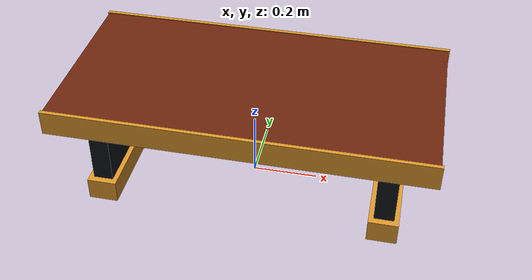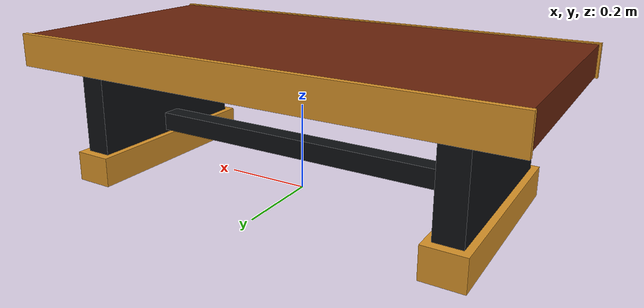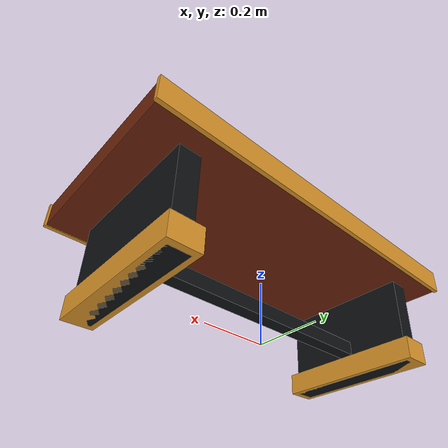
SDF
<?xml version="1.0"?>
<sdf version="1.9">
  <model name="fancy_table">
    <static>true</static>
    <link name="table">
      <!-- Simple collision shapes keep the table stable and inexpensive to simulate. -->
      <collision name="top_collision">
        <!-- Top surface is z=0.35, matching panda_link0 in arm.xacro. -->
        <pose>0 0 0.315 0 0 0</pose>
        <geometry><box><size>1.12 0.56 0.07</size></box></geometry>
      </collision>
      <collision name="left_leg_collision">
        <pose>-0.43 0 0.1525 0 0 0</pose>
        <geometry><box><size>0.06 0.44 0.305</size></box></geometry>
      </collision>
      <collision name="right_leg_collision">
        <pose>0.43 0 0.1525 0 0 0</pose>
        <geometry><box><size>0.06 0.44 0.305</size></box></geometry>
      </collision>

      <!-- Warm walnut top. -->
      <visual name="walnut_top">
        <pose>0 0 0.315 0 0 0</pose>
        <geometry><box><size>1.12 0.56 0.07</size></box></geometry>
        <material>
          <ambient>0.24 0.075 0.025 1</ambient>
          <diffuse>0.42 0.14 0.045 1</diffuse>
          <specular>0.22 0.16 0.10 1</specular>
        </material>
      </visual>

      <!-- Thin brass edge bands give the top a more finished appearance. -->
      <visual name="front_brass_trim">
        <pose>0 -0.283 0.315 0 0 0</pose>
        <geometry><box><size>1.13 0.012 0.075</size></box></geometry>
        <material>
          <ambient>0.55 0.32 0.07 1</ambient>
          <diffuse>0.85 0.58 0.16 1</diffuse>
          <specular>0.95 0.80 0.35 1</specular>
        </material>
      </visual>
      <visual name="back_brass_trim">
        <pose>0 0.283 0.315 0 0 0</pose>
        <geometry><box><size>1.13 0.012 0.075</size></box></geometry>
        <material>
          <ambient>0.55 0.32 0.07 1</ambient>
          <diffuse>0.85 0.58 0.16 1</diffuse>
          <specular>0.95 0.80 0.35 1</specular>
        </material>
      </visual>

      <!-- Matte-black steel pedestal legs and lower crossbar. -->
      <visual name="left_leg">
        <pose>-0.43 0 0.1525 0 0 0</pose>
        <geometry><box><size>0.06 0.44 0.305</size></box></geometry>
        <material>
          <ambient>0.025 0.03 0.035 1</ambient>
          <diffuse>0.055 0.065 0.075 1</diffuse>
          <specular>0.35 0.38 0.40 1</specular>
        </material>
      </visual>
      <visual name="right_leg">
        <pose>0.43 0 0.1525 0 0 0</pose>
        <geometry><box><size>0.06 0.44 0.305</size></box></geometry>
        <material>
          <ambient>0.025 0.03 0.035 1</ambient>
          <diffuse>0.055 0.065 0.075 1</diffuse>
          <specular>0.35 0.38 0.40 1</specular>
        </material>
      </visual>
      <visual name="lower_crossbar">
        <pose>0 0 0.10 0 0 0</pose>
        <geometry><box><size>0.86 0.045 0.045</size></box></geometry>
        <material>
          <ambient>0.025 0.03 0.035 1</ambient>
          <diffuse>0.055 0.065 0.075 1</diffuse>
          <specular>0.35 0.38 0.40 1</specular>
        </material>
      </visual>

      <!-- Brass feet echo the trim around the tabletop. -->
      <visual name="left_foot">
        <pose>-0.43 0 0.035 0 0 0</pose>
        <geometry><box><size>0.09 0.48 0.07</size></box></geometry>
        <material>
          <ambient>0.55 0.32 0.07 1</ambient>
          <diffuse>0.85 0.58 0.16 1</diffuse>
          <specular>0.95 0.80 0.35 1</specular>
        </material>
      </visual>
      <visual name="right_foot">
        <pose>0.43 0 0.035 0 0 0</pose>
        <geometry><box><size>0.09 0.48 0.07</size></box></geometry>
        <material>
          <ambient>0.55 0.32 0.07 1</ambient>
          <diffuse>0.85 0.58 0.16 1</diffuse>
          <specular>0.95 0.80 0.35 1</specular>
        </material>
      </visual>
    </link>
  </model>
</sdf>
